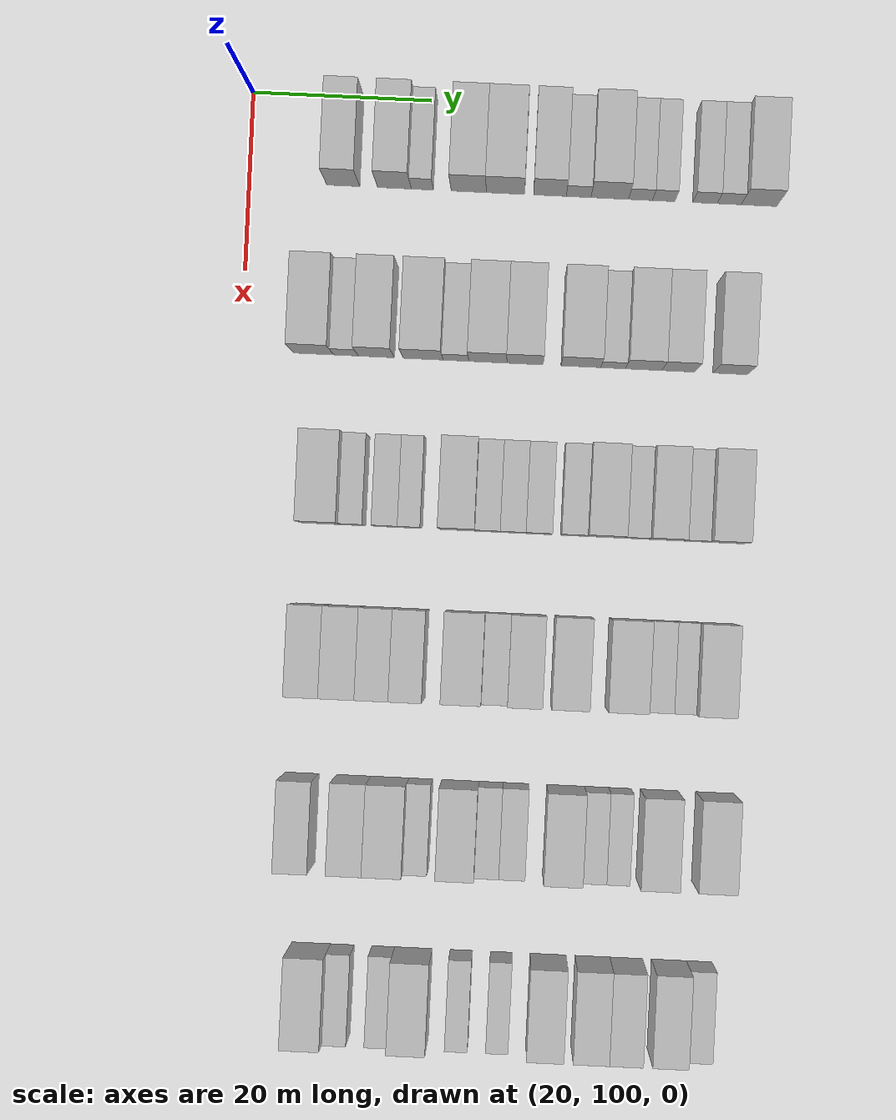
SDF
<sdf version="1.6">
 <world name="default">
  <model name="building_111">
   <static>1</static>
   <pose>25.0000 110.5520 0 0.000000 0.000000 0.000000</pose>
   <link name="link">
    <pose>0 0 4.50 0 0 0</pose>
    <collision name="collision"><geometry><box><size>10.0000 3.6870 9.0000</size></box></geometry></collision>
    <visual name="visual">
     <cast_shadows>0</cast_shadows>
     <geometry><box><size>10.0000 3.6870 9.0000</size></box></geometry>
     <material>
      <script>
       <uri>model://HANNAS_wall/materials/scripts</uri>
       <uri>model://HANNAS_wall/materials/textures</uri>
       <name>vrc/HANNAS_wall</name>
      </script>
     </material>
    </visual>
   </link>
  </model>
  <model name="building_112">
   <static>1</static>
   <pose>25.0000 116.2896 0 0.000000 0.000000 0.000000</pose>
   <link name="link">
    <pose>0 0 4.50 0 0 0</pose>
    <collision name="collision"><geometry><box><size>10.0000 3.7882 9.0000</size></box></geometry></collision>
    <visual name="visual">
     <cast_shadows>0</cast_shadows>
     <geometry><box><size>10.0000 3.7882 9.0000</size></box></geometry>
     <material>
      <script>
       <uri>model://HANNAS_wall/materials/scripts</uri>
       <uri>model://HANNAS_wall/materials/textures</uri>
       <name>vrc/HANNAS_wall</name>
      </script>
     </material>
    </visual>
   </link>
  </model>
  <model name="building_113">
   <static>1</static>
   <pose>25.0000 119.4258 0 0.000000 0.000000 0.000000</pose>
   <link name="link">
    <pose>0 0 3.00 0 0 0</pose>
    <collision name="collision"><geometry><box><size>10.0000 2.4841 6.0000</size></box></geometry></collision>
    <visual name="visual">
     <cast_shadows>0</cast_shadows>
     <geometry><box><size>10.0000 2.4841 6.0000</size></box></geometry>
     <material>
      <script>
       <uri>model://HANNAS_wall/materials/scripts</uri>
       <uri>model://HANNAS_wall/materials/textures</uri>
       <name>vrc/HANNAS_wall</name>
      </script>
     </material>
    </visual>
   </link>
  </model>
  <model name="building_114">
   <static>1</static>
   <pose>25.0000 124.6432 0 0.000000 0.000000 0.000000</pose>
   <link name="link">
    <pose>0 0 4.50 0 0 0</pose>
    <collision name="collision"><geometry><box><size>10.0000 3.9507 9.0000</size></box></geometry></collision>
    <visual name="visual">
     <cast_shadows>0</cast_shadows>
     <geometry><box><size>10.0000 3.9507 9.0000</size></box></geometry>
     <material>
      <script>
       <uri>model://HANNAS_wall/materials/scripts</uri>
       <uri>model://HANNAS_wall/materials/textures</uri>
       <name>vrc/HANNAS_wall</name>
      </script>
     </material>
    </visual>
   </link>
  </model>
  <model name="building_115">
   <static>1</static>
   <pose>25.0000 128.7717 0 0.000000 0.000000 0.000000</pose>
   <link name="link">
    <pose>0 0 4.50 0 0 0</pose>
    <collision name="collision"><geometry><box><size>10.0000 4.3062 9.0000</size></box></geometry></collision>
    <visual name="visual">
     <cast_shadows>0</cast_shadows>
     <geometry><box><size>10.0000 4.3062 9.0000</size></box></geometry>
     <material>
      <script>
       <uri>model://HANNAS_wall/materials/scripts</uri>
       <uri>model://HANNAS_wall/materials/textures</uri>
       <name>vrc/HANNAS_wall</name>
      </script>
     </material>
    </visual>
   </link>
  </model>
  <model name="building_116">
   <static>1</static>
   <pose>25.0000 133.7545 0 0.000000 0.000000 0.000000</pose>
   <link name="link">
    <pose>0 0 4.50 0 0 0</pose>
    <collision name="collision"><geometry><box><size>10.0000 3.6595 9.0000</size></box></geometry></collision>
    <visual name="visual">
     <cast_shadows>0</cast_shadows>
     <geometry><box><size>10.0000 3.6595 9.0000</size></box></geometry>
     <material>
      <script>
       <uri>model://HANNAS_wall/materials/scripts</uri>
       <uri>model://HANNAS_wall/materials/textures</uri>
       <name>vrc/HANNAS_wall</name>
      </script>
     </material>
    </visual>
   </link>
  </model>
  <model name="building_117">
   <static>1</static>
   <pose>25.0000 136.9724 0 0.000000 0.000000 0.000000</pose>
   <link name="link">
    <pose>0 0 3.00 0 0 0</pose>
    <collision name="collision"><geometry><box><size>10.0000 2.7761 6.0000</size></box></geometry></collision>
    <visual name="visual">
     <cast_shadows>0</cast_shadows>
     <geometry><box><size>10.0000 2.7761 6.0000</size></box></geometry>
     <material>
      <script>
       <uri>model://HANNAS_wall/materials/scripts</uri>
       <uri>model://HANNAS_wall/materials/textures</uri>
       <name>vrc/HANNAS_wall</name>
      </script>
     </material>
    </visual>
   </link>
  </model>
  <model name="building_118">
   <static>1</static>
   <pose>25.0000 140.4654 0 0.000000 0.000000 0.000000</pose>
   <link name="link">
    <pose>0 0 4.50 0 0 0</pose>
    <collision name="collision"><geometry><box><size>10.0000 4.2099 9.0000</size></box></geometry></collision>
    <visual name="visual">
     <cast_shadows>0</cast_shadows>
     <geometry><box><size>10.0000 4.2099 9.0000</size></box></geometry>
     <material>
      <script>
       <uri>model://HANNAS_wall/materials/scripts</uri>
       <uri>model://HANNAS_wall/materials/textures</uri>
       <name>vrc/HANNAS_wall</name>
      </script>
     </material>
    </visual>
   </link>
  </model>
  <model name="building_119">
   <static>1</static>
   <pose>25.0000 143.9133 0 0.000000 0.000000 0.000000</pose>
   <link name="link">
    <pose>0 0 3.00 0 0 0</pose>
    <collision name="collision"><geometry><box><size>10.0000 2.6859 6.0000</size></box></geometry></collision>
    <visual name="visual">
     <cast_shadows>0</cast_shadows>
     <geometry><box><size>10.0000 2.6859 6.0000</size></box></geometry>
     <material>
      <script>
       <uri>model://HANNAS_wall/materials/scripts</uri>
       <uri>model://HANNAS_wall/materials/textures</uri>
       <name>vrc/HANNAS_wall</name>
      </script>
     </material>
    </visual>
   </link>
  </model>
  <model name="building_120">
   <static>1</static>
   <pose>25.0000 146.5128 0 0.000000 0.000000 0.000000</pose>
   <link name="link">
    <pose>0 0 3.00 0 0 0</pose>
    <collision name="collision"><geometry><box><size>10.0000 2.5131 6.0000</size></box></geometry></collision>
    <visual name="visual">
     <cast_shadows>0</cast_shadows>
     <geometry><box><size>10.0000 2.5131 6.0000</size></box></geometry>
     <material>
      <script>
       <uri>model://HANNAS_wall/materials/scripts</uri>
       <uri>model://HANNAS_wall/materials/textures</uri>
       <name>vrc/HANNAS_wall</name>
      </script>
     </material>
    </visual>
   </link>
  </model>
  <model name="building_121">
   <static>1</static>
   <pose>25.0000 151.1463 0 0.000000 0.000000 0.000000</pose>
   <link name="link">
    <pose>0 0 3.00 0 0 0</pose>
    <collision name="collision"><geometry><box><size>10.0000 2.7539 6.0000</size></box></geometry></collision>
    <visual name="visual">
     <cast_shadows>0</cast_shadows>
     <geometry><box><size>10.0000 2.7539 6.0000</size></box></geometry>
     <material>
      <script>
       <uri>model://HANNAS_wall/materials/scripts</uri>
       <uri>model://HANNAS_wall/materials/textures</uri>
       <name>vrc/HANNAS_wall</name>
      </script>
     </material>
    </visual>
   </link>
  </model>
  <model name="building_122">
   <static>1</static>
   <pose>25.0000 153.8680 0 0.000000 0.000000 0.000000</pose>
   <link name="link">
    <pose>0 0 3.00 0 0 0</pose>
    <collision name="collision"><geometry><box><size>10.0000 2.6895 6.0000</size></box></geometry></collision>
    <visual name="visual">
     <cast_shadows>0</cast_shadows>
     <geometry><box><size>10.0000 2.6895 6.0000</size></box></geometry>
     <material>
      <script>
       <uri>model://HANNAS_wall/materials/scripts</uri>
       <uri>model://HANNAS_wall/materials/textures</uri>
       <name>vrc/HANNAS_wall</name>
      </script>
     </material>
    </visual>
   </link>
  </model>
  <model name="building_123">
   <static>1</static>
   <pose>25.0000 157.2155 0 0.000000 0.000000 0.000000</pose>
   <link name="link">
    <pose>0 0 4.50 0 0 0</pose>
    <collision name="collision"><geometry><box><size>10.0000 4.0056 9.0000</size></box></geometry></collision>
    <visual name="visual">
     <cast_shadows>0</cast_shadows>
     <geometry><box><size>10.0000 4.0056 9.0000</size></box></geometry>
     <material>
      <script>
       <uri>model://HANNAS_wall/materials/scripts</uri>
       <uri>model://HANNAS_wall/materials/textures</uri>
       <name>vrc/HANNAS_wall</name>
      </script>
     </material>
    </visual>
   </link>
  </model>
  <model name="building_285">
   <static>1</static>
   <pose>44.0000 108.1648 0 0.000000 0.000000 0.000000</pose>
   <link name="link">
    <pose>0 0 4.50 0 0 0</pose>
    <collision name="collision"><geometry><box><size>10.0000 4.4582 9.0000</size></box></geometry></collision>
    <visual name="visual">
     <cast_shadows>0</cast_shadows>
     <geometry><box><size>10.0000 4.4582 9.0000</size></box></geometry>
     <material>
      <script>
       <uri>model://HANNAS_wall/materials/scripts</uri>
       <uri>model://HANNAS_wall/materials/textures</uri>
       <name>vrc/HANNAS_wall</name>
      </script>
     </material>
    </visual>
   </link>
  </model>
  <model name="building_286">
   <static>1</static>
   <pose>44.0000 111.7737 0 0.000000 0.000000 0.000000</pose>
   <link name="link">
    <pose>0 0 3.00 0 0 0</pose>
    <collision name="collision"><geometry><box><size>10.0000 2.7597 6.0000</size></box></geometry></collision>
    <visual name="visual">
     <cast_shadows>0</cast_shadows>
     <geometry><box><size>10.0000 2.7597 6.0000</size></box></geometry>
     <material>
      <script>
       <uri>model://HANNAS_wall/materials/scripts</uri>
       <uri>model://HANNAS_wall/materials/textures</uri>
       <name>vrc/HANNAS_wall</name>
      </script>
     </material>
    </visual>
   </link>
  </model>
  <model name="building_287">
   <static>1</static>
   <pose>44.0000 115.1800 0 0.000000 0.000000 0.000000</pose>
   <link name="link">
    <pose>0 0 4.50 0 0 0</pose>
    <collision name="collision"><geometry><box><size>10.0000 4.0528 9.0000</size></box></geometry></collision>
    <visual name="visual">
     <cast_shadows>0</cast_shadows>
     <geometry><box><size>10.0000 4.0528 9.0000</size></box></geometry>
     <material>
      <script>
       <uri>model://HANNAS_wall/materials/scripts</uri>
       <uri>model://HANNAS_wall/materials/textures</uri>
       <name>vrc/HANNAS_wall</name>
      </script>
     </material>
    </visual>
   </link>
  </model>
  <model name="building_288">
   <static>1</static>
   <pose>44.0000 120.4394 0 0.000000 0.000000 0.000000</pose>
   <link name="link">
    <pose>0 0 4.50 0 0 0</pose>
    <collision name="collision"><geometry><box><size>10.0000 4.4661 9.0000</size></box></geometry></collision>
    <visual name="visual">
     <cast_shadows>0</cast_shadows>
     <geometry><box><size>10.0000 4.4661 9.0000</size></box></geometry>
     <material>
      <script>
       <uri>model://HANNAS_wall/materials/scripts</uri>
       <uri>model://HANNAS_wall/materials/textures</uri>
       <name>vrc/HANNAS_wall</name>
      </script>
     </material>
    </visual>
   </link>
  </model>
  <model name="building_289">
   <static>1</static>
   <pose>44.0000 124.1171 0 0.000000 0.000000 0.000000</pose>
   <link name="link">
    <pose>0 0 3.00 0 0 0</pose>
    <collision name="collision"><geometry><box><size>10.0000 2.8892 6.0000</size></box></geometry></collision>
    <visual name="visual">
     <cast_shadows>0</cast_shadows>
     <geometry><box><size>10.0000 2.8892 6.0000</size></box></geometry>
     <material>
      <script>
       <uri>model://HANNAS_wall/materials/scripts</uri>
       <uri>model://HANNAS_wall/materials/textures</uri>
       <name>vrc/HANNAS_wall</name>
      </script>
     </material>
    </visual>
   </link>
  </model>
  <model name="building_290">
   <static>1</static>
   <pose>44.0000 127.6932 0 0.000000 0.000000 0.000000</pose>
   <link name="link">
    <pose>0 0 4.50 0 0 0</pose>
    <collision name="collision"><geometry><box><size>10.0000 4.2631 9.0000</size></box></geometry></collision>
    <visual name="visual">
     <cast_shadows>0</cast_shadows>
     <geometry><box><size>10.0000 4.2631 9.0000</size></box></geometry>
     <material>
      <script>
       <uri>model://HANNAS_wall/materials/scripts</uri>
       <uri>model://HANNAS_wall/materials/textures</uri>
       <name>vrc/HANNAS_wall</name>
      </script>
     </material>
    </visual>
   </link>
  </model>
  <model name="building_291">
   <static>1</static>
   <pose>44.0000 131.8598 0 0.000000 0.000000 0.000000</pose>
   <link name="link">
    <pose>0 0 4.50 0 0 0</pose>
    <collision name="collision"><geometry><box><size>10.0000 4.0700 9.0000</size></box></geometry></collision>
    <visual name="visual">
     <cast_shadows>0</cast_shadows>
     <geometry><box><size>10.0000 4.0700 9.0000</size></box></geometry>
     <material>
      <script>
       <uri>model://HANNAS_wall/materials/scripts</uri>
       <uri>model://HANNAS_wall/materials/textures</uri>
       <name>vrc/HANNAS_wall</name>
      </script>
     </material>
    </visual>
   </link>
  </model>
  <model name="building_292">
   <static>1</static>
   <pose>44.0000 138.1157 0 0.000000 0.000000 0.000000</pose>
   <link name="link">
    <pose>0 0 4.50 0 0 0</pose>
    <collision name="collision"><geometry><box><size>10.0000 4.4419 9.0000</size></box></geometry></collision>
    <visual name="visual">
     <cast_shadows>0</cast_shadows>
     <geometry><box><size>10.0000 4.4419 9.0000</size></box></geometry>
     <material>
      <script>
       <uri>model://HANNAS_wall/materials/scripts</uri>
       <uri>model://HANNAS_wall/materials/textures</uri>
       <name>vrc/HANNAS_wall</name>
      </script>
     </material>
    </visual>
   </link>
  </model>
  <model name="building_293">
   <static>1</static>
   <pose>44.0000 141.7270 0 0.000000 0.000000 0.000000</pose>
   <link name="link">
    <pose>0 0 3.00 0 0 0</pose>
    <collision name="collision"><geometry><box><size>10.0000 2.7805 6.0000</size></box></geometry></collision>
    <visual name="visual">
     <cast_shadows>0</cast_shadows>
     <geometry><box><size>10.0000 2.7805 6.0000</size></box></geometry>
     <material>
      <script>
       <uri>model://HANNAS_wall/materials/scripts</uri>
       <uri>model://HANNAS_wall/materials/textures</uri>
       <name>vrc/HANNAS_wall</name>
      </script>
     </material>
    </visual>
   </link>
  </model>
  <model name="building_294">
   <static>1</static>
   <pose>44.0000 145.1623 0 0.000000 0.000000 0.000000</pose>
   <link name="link">
    <pose>0 0 4.50 0 0 0</pose>
    <collision name="collision"><geometry><box><size>10.0000 4.0901 9.0000</size></box></geometry></collision>
    <visual name="visual">
     <cast_shadows>0</cast_shadows>
     <geometry><box><size>10.0000 4.0901 9.0000</size></box></geometry>
     <material>
      <script>
       <uri>model://HANNAS_wall/materials/scripts</uri>
       <uri>model://HANNAS_wall/materials/textures</uri>
       <name>vrc/HANNAS_wall</name>
      </script>
     </material>
    </visual>
   </link>
  </model>
  <model name="building_295">
   <static>1</static>
   <pose>44.0000 149.0762 0 0.000000 0.000000 0.000000</pose>
   <link name="link">
    <pose>0 0 4.50 0 0 0</pose>
    <collision name="collision"><geometry><box><size>10.0000 3.7377 9.0000</size></box></geometry></collision>
    <visual name="visual">
     <cast_shadows>0</cast_shadows>
     <geometry><box><size>10.0000 3.7377 9.0000</size></box></geometry>
     <material>
      <script>
       <uri>model://HANNAS_wall/materials/scripts</uri>
       <uri>model://HANNAS_wall/materials/textures</uri>
       <name>vrc/HANNAS_wall</name>
      </script>
     </material>
    </visual>
   </link>
  </model>
  <model name="building_296">
   <static>1</static>
   <pose>44.0000 154.8935 0 0.000000 0.000000 0.000000</pose>
   <link name="link">
    <pose>0 0 4.50 0 0 0</pose>
    <collision name="collision"><geometry><box><size>10.0000 3.8968 9.0000</size></box></geometry></collision>
    <visual name="visual">
     <cast_shadows>0</cast_shadows>
     <geometry><box><size>10.0000 3.8968 9.0000</size></box></geometry>
     <material>
      <script>
       <uri>model://HANNAS_wall/materials/scripts</uri>
       <uri>model://HANNAS_wall/materials/textures</uri>
       <name>vrc/HANNAS_wall</name>
      </script>
     </material>
    </visual>
   </link>
  </model>
  <model name="building_449">
   <static>1</static>
   <pose>63.0000 110.0225 0 0.000000 0.000000 0.000000</pose>
   <link name="link">
    <pose>0 0 4.50 0 0 0</pose>
    <collision name="collision"><geometry><box><size>10.0000 4.4672 9.0000</size></box></geometry></collision>
    <visual name="visual">
     <cast_shadows>0</cast_shadows>
     <geometry><box><size>10.0000 4.4672 9.0000</size></box></geometry>
     <material>
      <script>
       <uri>model://HANNAS_wall/materials/scripts</uri>
       <uri>model://HANNAS_wall/materials/textures</uri>
       <name>vrc/HANNAS_wall</name>
      </script>
     </material>
    </visual>
   </link>
  </model>
  <model name="building_450">
   <static>1</static>
   <pose>63.0000 113.5663 0 0.000000 0.000000 0.000000</pose>
   <link name="link">
    <pose>0 0 3.00 0 0 0</pose>
    <collision name="collision"><geometry><box><size>10.0000 2.6205 6.0000</size></box></geometry></collision>
    <visual name="visual">
     <cast_shadows>0</cast_shadows>
     <geometry><box><size>10.0000 2.6205 6.0000</size></box></geometry>
     <material>
      <script>
       <uri>model://HANNAS_wall/materials/scripts</uri>
       <uri>model://HANNAS_wall/materials/textures</uri>
       <name>vrc/HANNAS_wall</name>
      </script>
     </material>
    </visual>
   </link>
  </model>
  <model name="building_451">
   <static>1</static>
   <pose>63.0000 117.3115 0 0.000000 0.000000 0.000000</pose>
   <link name="link">
    <pose>0 0 3.00 0 0 0</pose>
    <collision name="collision"><geometry><box><size>10.0000 2.8699 6.0000</size></box></geometry></collision>
    <visual name="visual">
     <cast_shadows>0</cast_shadows>
     <geometry><box><size>10.0000 2.8699 6.0000</size></box></geometry>
     <material>
      <script>
       <uri>model://HANNAS_wall/materials/scripts</uri>
       <uri>model://HANNAS_wall/materials/textures</uri>
       <name>vrc/HANNAS_wall</name>
      </script>
     </material>
    </visual>
   </link>
  </model>
  <model name="building_452">
   <static>1</static>
   <pose>63.0000 119.9893 0 0.000000 0.000000 0.000000</pose>
   <link name="link">
    <pose>0 0 3.00 0 0 0</pose>
    <collision name="collision"><geometry><box><size>10.0000 2.4857 6.0000</size></box></geometry></collision>
    <visual name="visual">
     <cast_shadows>0</cast_shadows>
     <geometry><box><size>10.0000 2.4857 6.0000</size></box></geometry>
     <material>
      <script>
       <uri>model://HANNAS_wall/materials/scripts</uri>
       <uri>model://HANNAS_wall/materials/textures</uri>
       <name>vrc/HANNAS_wall</name>
      </script>
     </material>
    </visual>
   </link>
  </model>
  <model name="building_453">
   <static>1</static>
   <pose>63.0000 125.2352 0 0.000000 0.000000 0.000000</pose>
   <link name="link">
    <pose>0 0 4.50 0 0 0</pose>
    <collision name="collision"><geometry><box><size>10.0000 4.0062 9.0000</size></box></geometry></collision>
    <visual name="visual">
     <cast_shadows>0</cast_shadows>
     <geometry><box><size>10.0000 4.0062 9.0000</size></box></geometry>
     <material>
      <script>
       <uri>model://HANNAS_wall/materials/scripts</uri>
       <uri>model://HANNAS_wall/materials/textures</uri>
       <name>vrc/HANNAS_wall</name>
      </script>
     </material>
    </visual>
   </link>
  </model>
  <model name="building_454">
   <static>1</static>
   <pose>63.0000 128.6242 0 0.000000 0.000000 0.000000</pose>
   <link name="link">
    <pose>0 0 3.00 0 0 0</pose>
    <collision name="collision"><geometry><box><size>10.0000 2.7716 6.0000</size></box></geometry></collision>
    <visual name="visual">
     <cast_shadows>0</cast_shadows>
     <geometry><box><size>10.0000 2.7716 6.0000</size></box></geometry>
     <material>
      <script>
       <uri>model://HANNAS_wall/materials/scripts</uri>
       <uri>model://HANNAS_wall/materials/textures</uri>
       <name>vrc/HANNAS_wall</name>
      </script>
     </material>
    </visual>
   </link>
  </model>
  <model name="building_455">
   <static>1</static>
   <pose>63.0000 131.4279 0 0.000000 0.000000 0.000000</pose>
   <link name="link">
    <pose>0 0 3.00 0 0 0</pose>
    <collision name="collision"><geometry><box><size>10.0000 2.8358 6.0000</size></box></geometry></collision>
    <visual name="visual">
     <cast_shadows>0</cast_shadows>
     <geometry><box><size>10.0000 2.8358 6.0000</size></box></geometry>
     <material>
      <script>
       <uri>model://HANNAS_wall/materials/scripts</uri>
       <uri>model://HANNAS_wall/materials/textures</uri>
       <name>vrc/HANNAS_wall</name>
      </script>
     </material>
    </visual>
   </link>
  </model>
  <model name="building_456">
   <static>1</static>
   <pose>63.0000 134.2974 0 0.000000 0.000000 0.000000</pose>
   <link name="link">
    <pose>0 0 3.00 0 0 0</pose>
    <collision name="collision"><geometry><box><size>10.0000 2.9033 6.0000</size></box></geometry></collision>
    <visual name="visual">
     <cast_shadows>0</cast_shadows>
     <geometry><box><size>10.0000 2.9033 6.0000</size></box></geometry>
     <material>
      <script>
       <uri>model://HANNAS_wall/materials/scripts</uri>
       <uri>model://HANNAS_wall/materials/textures</uri>
       <name>vrc/HANNAS_wall</name>
      </script>
     </material>
    </visual>
   </link>
  </model>
  <model name="building_457">
   <static>1</static>
   <pose>63.0000 138.1953 0 0.000000 0.000000 0.000000</pose>
   <link name="link">
    <pose>0 0 3.00 0 0 0</pose>
    <collision name="collision"><geometry><box><size>10.0000 2.8924 6.0000</size></box></geometry></collision>
    <visual name="visual">
     <cast_shadows>0</cast_shadows>
     <geometry><box><size>10.0000 2.8924 6.0000</size></box></geometry>
     <material>
      <script>
       <uri>model://HANNAS_wall/materials/scripts</uri>
       <uri>model://HANNAS_wall/materials/textures</uri>
       <name>vrc/HANNAS_wall</name>
      </script>
     </material>
    </visual>
   </link>
  </model>
  <model name="building_458">
   <static>1</static>
   <pose>63.0000 141.7255 0 0.000000 0.000000 0.000000</pose>
   <link name="link">
    <pose>0 0 4.50 0 0 0</pose>
    <collision name="collision"><geometry><box><size>10.0000 4.1680 9.0000</size></box></geometry></collision>
    <visual name="visual">
     <cast_shadows>0</cast_shadows>
     <geometry><box><size>10.0000 4.1680 9.0000</size></box></geometry>
     <material>
      <script>
       <uri>model://HANNAS_wall/materials/scripts</uri>
       <uri>model://HANNAS_wall/materials/textures</uri>
       <name>vrc/HANNAS_wall</name>
      </script>
     </material>
    </visual>
   </link>
  </model>
  <model name="building_459">
   <static>1</static>
   <pose>63.0000 145.1602 0 0.000000 0.000000 0.000000</pose>
   <link name="link">
    <pose>0 0 3.00 0 0 0</pose>
    <collision name="collision"><geometry><box><size>10.0000 2.7015 6.0000</size></box></geometry></collision>
    <visual name="visual">
     <cast_shadows>0</cast_shadows>
     <geometry><box><size>10.0000 2.7015 6.0000</size></box></geometry>
     <material>
      <script>
       <uri>model://HANNAS_wall/materials/scripts</uri>
       <uri>model://HANNAS_wall/materials/textures</uri>
       <name>vrc/HANNAS_wall</name>
      </script>
     </material>
    </visual>
   </link>
  </model>
  <model name="building_460">
   <static>1</static>
   <pose>63.0000 148.4349 0 0.000000 0.000000 0.000000</pose>
   <link name="link">
    <pose>0 0 4.50 0 0 0</pose>
    <collision name="collision"><geometry><box><size>10.0000 3.8479 9.0000</size></box></geometry></collision>
    <visual name="visual">
     <cast_shadows>0</cast_shadows>
     <geometry><box><size>10.0000 3.8479 9.0000</size></box></geometry>
     <material>
      <script>
       <uri>model://HANNAS_wall/materials/scripts</uri>
       <uri>model://HANNAS_wall/materials/textures</uri>
       <name>vrc/HANNAS_wall</name>
      </script>
     </material>
    </visual>
   </link>
  </model>
  <model name="building_461">
   <static>1</static>
   <pose>63.0000 151.7336 0 0.000000 0.000000 0.000000</pose>
   <link name="link">
    <pose>0 0 3.00 0 0 0</pose>
    <collision name="collision"><geometry><box><size>10.0000 2.7494 6.0000</size></box></geometry></collision>
    <visual name="visual">
     <cast_shadows>0</cast_shadows>
     <geometry><box><size>10.0000 2.7494 6.0000</size></box></geometry>
     <material>
      <script>
       <uri>model://HANNAS_wall/materials/scripts</uri>
       <uri>model://HANNAS_wall/materials/textures</uri>
       <name>vrc/HANNAS_wall</name>
      </script>
     </material>
    </visual>
   </link>
  </model>
  <model name="building_462">
   <static>1</static>
   <pose>63.0000 155.1711 0 0.000000 0.000000 0.000000</pose>
   <link name="link">
    <pose>0 0 4.50 0 0 0</pose>
    <collision name="collision"><geometry><box><size>10.0000 4.1257 9.0000</size></box></geometry></collision>
    <visual name="visual">
     <cast_shadows>0</cast_shadows>
     <geometry><box><size>10.0000 4.1257 9.0000</size></box></geometry>
     <material>
      <script>
       <uri>model://HANNAS_wall/materials/scripts</uri>
       <uri>model://HANNAS_wall/materials/textures</uri>
       <name>vrc/HANNAS_wall</name>
      </script>
     </material>
    </visual>
   </link>
  </model>
  <model name="building_616">
   <static>1</static>
   <pose>82.0000 109.3740 0 0.000000 0.000000 0.000000</pose>
   <link name="link">
    <pose>0 0 4.50 0 0 0</pose>
    <collision name="collision"><geometry><box><size>10.0000 3.7739 9.0000</size></box></geometry></collision>
    <visual name="visual">
     <cast_shadows>0</cast_shadows>
     <geometry><box><size>10.0000 3.7739 9.0000</size></box></geometry>
     <material>
      <script>
       <uri>model://HANNAS_wall/materials/scripts</uri>
       <uri>model://HANNAS_wall/materials/textures</uri>
       <name>vrc/HANNAS_wall</name>
      </script>
     </material>
    </visual>
   </link>
  </model>
  <model name="building_617">
   <static>1</static>
   <pose>82.0000 113.2169 0 0.000000 0.000000 0.000000</pose>
   <link name="link">
    <pose>0 0 4.50 0 0 0</pose>
    <collision name="collision"><geometry><box><size>10.0000 3.9120 9.0000</size></box></geometry></collision>
    <visual name="visual">
     <cast_shadows>0</cast_shadows>
     <geometry><box><size>10.0000 3.9120 9.0000</size></box></geometry>
     <material>
      <script>
       <uri>model://HANNAS_wall/materials/scripts</uri>
       <uri>model://HANNAS_wall/materials/textures</uri>
       <name>vrc/HANNAS_wall</name>
      </script>
     </material>
    </visual>
   </link>
  </model>
  <model name="building_618">
   <static>1</static>
   <pose>82.0000 117.0013 0 0.000000 0.000000 0.000000</pose>
   <link name="link">
    <pose>0 0 4.50 0 0 0</pose>
    <collision name="collision"><geometry><box><size>10.0000 3.6567 9.0000</size></box></geometry></collision>
    <visual name="visual">
     <cast_shadows>0</cast_shadows>
     <geometry><box><size>10.0000 3.6567 9.0000</size></box></geometry>
     <material>
      <script>
       <uri>model://HANNAS_wall/materials/scripts</uri>
       <uri>model://HANNAS_wall/materials/textures</uri>
       <name>vrc/HANNAS_wall</name>
      </script>
     </material>
    </visual>
   </link>
  </model>
  <model name="building_619">
   <static>1</static>
   <pose>82.0000 120.6330 0 0.000000 0.000000 0.000000</pose>
   <link name="link">
    <pose>0 0 4.50 0 0 0</pose>
    <collision name="collision"><geometry><box><size>10.0000 3.6068 9.0000</size></box></geometry></collision>
    <visual name="visual">
     <cast_shadows>0</cast_shadows>
     <geometry><box><size>10.0000 3.6068 9.0000</size></box></geometry>
     <material>
      <script>
       <uri>model://HANNAS_wall/materials/scripts</uri>
       <uri>model://HANNAS_wall/materials/textures</uri>
       <name>vrc/HANNAS_wall</name>
      </script>
     </material>
    </visual>
   </link>
  </model>
  <model name="building_620">
   <static>1</static>
   <pose>82.0000 126.6398 0 0.000000 0.000000 0.000000</pose>
   <link name="link">
    <pose>0 0 4.50 0 0 0</pose>
    <collision name="collision"><geometry><box><size>10.0000 4.4067 9.0000</size></box></geometry></collision>
    <visual name="visual">
     <cast_shadows>0</cast_shadows>
     <geometry><box><size>10.0000 4.4067 9.0000</size></box></geometry>
     <material>
      <script>
       <uri>model://HANNAS_wall/materials/scripts</uri>
       <uri>model://HANNAS_wall/materials/textures</uri>
       <name>vrc/HANNAS_wall</name>
      </script>
     </material>
    </visual>
   </link>
  </model>
  <model name="building_621">
   <static>1</static>
   <pose>82.0000 130.2785 0 0.000000 0.000000 0.000000</pose>
   <link name="link">
    <pose>0 0 3.00 0 0 0</pose>
    <collision name="collision"><geometry><box><size>10.0000 2.8707 6.0000</size></box></geometry></collision>
    <visual name="visual">
     <cast_shadows>0</cast_shadows>
     <geometry><box><size>10.0000 2.8707 6.0000</size></box></geometry>
     <material>
      <script>
       <uri>model://HANNAS_wall/materials/scripts</uri>
       <uri>model://HANNAS_wall/materials/textures</uri>
       <name>vrc/HANNAS_wall</name>
      </script>
     </material>
    </visual>
   </link>
  </model>
  <model name="building_622">
   <static>1</static>
   <pose>82.0000 133.6136 0 0.000000 0.000000 0.000000</pose>
   <link name="link">
    <pose>0 0 4.50 0 0 0</pose>
    <collision name="collision"><geometry><box><size>10.0000 3.7995 9.0000</size></box></geometry></collision>
    <visual name="visual">
     <cast_shadows>0</cast_shadows>
     <geometry><box><size>10.0000 3.7995 9.0000</size></box></geometry>
     <material>
      <script>
       <uri>model://HANNAS_wall/materials/scripts</uri>
       <uri>model://HANNAS_wall/materials/textures</uri>
       <name>vrc/HANNAS_wall</name>
      </script>
     </material>
    </visual>
   </link>
  </model>
  <model name="building_623">
   <static>1</static>
   <pose>82.0000 138.5707 0 0.000000 0.000000 0.000000</pose>
   <link name="link">
    <pose>0 0 4.50 0 0 0</pose>
    <collision name="collision"><geometry><box><size>10.0000 4.1148 9.0000</size></box></geometry></collision>
    <visual name="visual">
     <cast_shadows>0</cast_shadows>
     <geometry><box><size>10.0000 4.1148 9.0000</size></box></geometry>
     <material>
      <script>
       <uri>model://HANNAS_wall/materials/scripts</uri>
       <uri>model://HANNAS_wall/materials/textures</uri>
       <name>vrc/HANNAS_wall</name>
      </script>
     </material>
    </visual>
   </link>
  </model>
  <model name="building_624">
   <static>1</static>
   <pose>82.0000 144.8416 0 0.000000 0.000000 0.000000</pose>
   <link name="link">
    <pose>0 0 4.50 0 0 0</pose>
    <collision name="collision"><geometry><box><size>10.0000 4.4271 9.0000</size></box></geometry></collision>
    <visual name="visual">
     <cast_shadows>0</cast_shadows>
     <geometry><box><size>10.0000 4.4271 9.0000</size></box></geometry>
     <material>
      <script>
       <uri>model://HANNAS_wall/materials/scripts</uri>
       <uri>model://HANNAS_wall/materials/textures</uri>
       <name>vrc/HANNAS_wall</name>
      </script>
     </material>
    </visual>
   </link>
  </model>
  <model name="building_625">
   <static>1</static>
   <pose>82.0000 148.5165 0 0.000000 0.000000 0.000000</pose>
   <link name="link">
    <pose>0 0 3.00 0 0 0</pose>
    <collision name="collision"><geometry><box><size>10.0000 2.9227 6.0000</size></box></geometry></collision>
    <visual name="visual">
     <cast_shadows>0</cast_shadows>
     <geometry><box><size>10.0000 2.9227 6.0000</size></box></geometry>
     <material>
      <script>
       <uri>model://HANNAS_wall/materials/scripts</uri>
       <uri>model://HANNAS_wall/materials/textures</uri>
       <name>vrc/HANNAS_wall</name>
      </script>
     </material>
    </visual>
   </link>
  </model>
  <model name="building_626">
   <static>1</static>
   <pose>82.0000 151.1850 0 0.000000 0.000000 0.000000</pose>
   <link name="link">
    <pose>0 0 3.00 0 0 0</pose>
    <collision name="collision"><geometry><box><size>10.0000 2.4142 6.0000</size></box></geometry></collision>
    <visual name="visual">
     <cast_shadows>0</cast_shadows>
     <geometry><box><size>10.0000 2.4142 6.0000</size></box></geometry>
     <material>
      <script>
       <uri>model://HANNAS_wall/materials/scripts</uri>
       <uri>model://HANNAS_wall/materials/textures</uri>
       <name>vrc/HANNAS_wall</name>
      </script>
     </material>
    </visual>
   </link>
  </model>
  <model name="building_627">
   <static>1</static>
   <pose>82.0000 154.4949 0 0.000000 0.000000 0.000000</pose>
   <link name="link">
    <pose>0 0 4.50 0 0 0</pose>
    <collision name="collision"><geometry><box><size>10.0000 4.2056 9.0000</size></box></geometry></collision>
    <visual name="visual">
     <cast_shadows>0</cast_shadows>
     <geometry><box><size>10.0000 4.2056 9.0000</size></box></geometry>
     <material>
      <script>
       <uri>model://HANNAS_wall/materials/scripts</uri>
       <uri>model://HANNAS_wall/materials/textures</uri>
       <name>vrc/HANNAS_wall</name>
      </script>
     </material>
    </visual>
   </link>
  </model>
  <model name="building_804">
   <static>1</static>
   <pose>101.0000 109.1007 0 0.000000 0.000000 0.000000</pose>
   <link name="link">
    <pose>0 0 4.50 0 0 0</pose>
    <collision name="collision"><geometry><box><size>10.0000 3.7615 9.0000</size></box></geometry></collision>
    <visual name="visual">
     <cast_shadows>0</cast_shadows>
     <geometry><box><size>10.0000 3.7615 9.0000</size></box></geometry>
     <material>
      <script>
       <uri>model://HANNAS_wall/materials/scripts</uri>
       <uri>model://HANNAS_wall/materials/textures</uri>
       <name>vrc/HANNAS_wall</name>
      </script>
     </material>
    </visual>
   </link>
  </model>
  <model name="building_805">
   <static>1</static>
   <pose>101.0000 114.9077 0 0.000000 0.000000 0.000000</pose>
   <link name="link">
    <pose>0 0 4.50 0 0 0</pose>
    <collision name="collision"><geometry><box><size>10.0000 3.8525 9.0000</size></box></geometry></collision>
    <visual name="visual">
     <cast_shadows>0</cast_shadows>
     <geometry><box><size>10.0000 3.8525 9.0000</size></box></geometry>
     <material>
      <script>
       <uri>model://HANNAS_wall/materials/scripts</uri>
       <uri>model://HANNAS_wall/materials/textures</uri>
       <name>vrc/HANNAS_wall</name>
      </script>
     </material>
    </visual>
   </link>
  </model>
  <model name="building_806">
   <static>1</static>
   <pose>101.0000 118.9839 0 0.000000 0.000000 0.000000</pose>
   <link name="link">
    <pose>0 0 4.50 0 0 0</pose>
    <collision name="collision"><geometry><box><size>10.0000 4.2998 9.0000</size></box></geometry></collision>
    <visual name="visual">
     <cast_shadows>0</cast_shadows>
     <geometry><box><size>10.0000 4.2998 9.0000</size></box></geometry>
     <material>
      <script>
       <uri>model://HANNAS_wall/materials/scripts</uri>
       <uri>model://HANNAS_wall/materials/textures</uri>
       <name>vrc/HANNAS_wall</name>
      </script>
     </material>
    </visual>
   </link>
  </model>
  <model name="building_807">
   <static>1</static>
   <pose>101.0000 122.4573 0 0.000000 0.000000 0.000000</pose>
   <link name="link">
    <pose>0 0 3.00 0 0 0</pose>
    <collision name="collision"><geometry><box><size>10.0000 2.6469 6.0000</size></box></geometry></collision>
    <visual name="visual">
     <cast_shadows>0</cast_shadows>
     <geometry><box><size>10.0000 2.6469 6.0000</size></box></geometry>
     <material>
      <script>
       <uri>model://HANNAS_wall/materials/scripts</uri>
       <uri>model://HANNAS_wall/materials/textures</uri>
       <name>vrc/HANNAS_wall</name>
      </script>
     </material>
    </visual>
   </link>
  </model>
  <model name="building_808">
   <static>1</static>
   <pose>101.0000 126.8718 0 0.000000 0.000000 0.000000</pose>
   <link name="link">
    <pose>0 0 4.50 0 0 0</pose>
    <collision name="collision"><geometry><box><size>10.0000 4.1821 9.0000</size></box></geometry></collision>
    <visual name="visual">
     <cast_shadows>0</cast_shadows>
     <geometry><box><size>10.0000 4.1821 9.0000</size></box></geometry>
     <material>
      <script>
       <uri>model://HANNAS_wall/materials/scripts</uri>
       <uri>model://HANNAS_wall/materials/textures</uri>
       <name>vrc/HANNAS_wall</name>
      </script>
     </material>
    </visual>
   </link>
  </model>
  <model name="building_809">
   <static>1</static>
   <pose>101.0000 130.3065 0 0.000000 0.000000 0.000000</pose>
   <link name="link">
    <pose>0 0 3.00 0 0 0</pose>
    <collision name="collision"><geometry><box><size>10.0000 2.6873 6.0000</size></box></geometry></collision>
    <visual name="visual">
     <cast_shadows>0</cast_shadows>
     <geometry><box><size>10.0000 2.6873 6.0000</size></box></geometry>
     <material>
      <script>
       <uri>model://HANNAS_wall/materials/scripts</uri>
       <uri>model://HANNAS_wall/materials/textures</uri>
       <name>vrc/HANNAS_wall</name>
      </script>
     </material>
    </visual>
   </link>
  </model>
  <model name="building_810">
   <static>1</static>
   <pose>101.0000 133.0940 0 0.000000 0.000000 0.000000</pose>
   <link name="link">
    <pose>0 0 3.00 0 0 0</pose>
    <collision name="collision"><geometry><box><size>10.0000 2.8877 6.0000</size></box></geometry></collision>
    <visual name="visual">
     <cast_shadows>0</cast_shadows>
     <geometry><box><size>10.0000 2.8877 6.0000</size></box></geometry>
     <material>
      <script>
       <uri>model://HANNAS_wall/materials/scripts</uri>
       <uri>model://HANNAS_wall/materials/textures</uri>
       <name>vrc/HANNAS_wall</name>
      </script>
     </material>
    </visual>
   </link>
  </model>
  <model name="building_811">
   <static>1</static>
   <pose>101.0000 138.6591 0 0.000000 0.000000 0.000000</pose>
   <link name="link">
    <pose>0 0 4.50 0 0 0</pose>
    <collision name="collision"><geometry><box><size>10.0000 4.2426 9.0000</size></box></geometry></collision>
    <visual name="visual">
     <cast_shadows>0</cast_shadows>
     <geometry><box><size>10.0000 4.2426 9.0000</size></box></geometry>
     <material>
      <script>
       <uri>model://HANNAS_wall/materials/scripts</uri>
       <uri>model://HANNAS_wall/materials/textures</uri>
       <name>vrc/HANNAS_wall</name>
      </script>
     </material>
    </visual>
   </link>
  </model>
  <model name="building_812">
   <static>1</static>
   <pose>101.0000 142.1297 0 0.000000 0.000000 0.000000</pose>
   <link name="link">
    <pose>0 0 3.00 0 0 0</pose>
    <collision name="collision"><geometry><box><size>10.0000 2.6987 6.0000</size></box></geometry></collision>
    <visual name="visual">
     <cast_shadows>0</cast_shadows>
     <geometry><box><size>10.0000 2.6987 6.0000</size></box></geometry>
     <material>
      <script>
       <uri>model://HANNAS_wall/materials/scripts</uri>
       <uri>model://HANNAS_wall/materials/textures</uri>
       <name>vrc/HANNAS_wall</name>
      </script>
     </material>
    </visual>
   </link>
  </model>
  <model name="building_813">
   <static>1</static>
   <pose>101.0000 144.7495 0 0.000000 0.000000 0.000000</pose>
   <link name="link">
    <pose>0 0 3.00 0 0 0</pose>
    <collision name="collision"><geometry><box><size>10.0000 2.5408 6.0000</size></box></geometry></collision>
    <visual name="visual">
     <cast_shadows>0</cast_shadows>
     <geometry><box><size>10.0000 2.5408 6.0000</size></box></geometry>
     <material>
      <script>
       <uri>model://HANNAS_wall/materials/scripts</uri>
       <uri>model://HANNAS_wall/materials/textures</uri>
       <name>vrc/HANNAS_wall</name>
      </script>
     </material>
    </visual>
   </link>
  </model>
  <model name="building_814">
   <static>1</static>
   <pose>101.0000 149.1392 0 0.000000 0.000000 0.000000</pose>
   <link name="link">
    <pose>0 0 4.50 0 0 0</pose>
    <collision name="collision"><geometry><box><size>10.0000 4.2387 9.0000</size></box></geometry></collision>
    <visual name="visual">
     <cast_shadows>0</cast_shadows>
     <geometry><box><size>10.0000 4.2387 9.0000</size></box></geometry>
     <material>
      <script>
       <uri>model://HANNAS_wall/materials/scripts</uri>
       <uri>model://HANNAS_wall/materials/textures</uri>
       <name>vrc/HANNAS_wall</name>
      </script>
     </material>
    </visual>
   </link>
  </model>
  <model name="building_815">
   <static>1</static>
   <pose>101.0000 155.3900 0 0.000000 0.000000 0.000000</pose>
   <link name="link">
    <pose>0 0 4.50 0 0 0</pose>
    <collision name="collision"><geometry><box><size>10.0000 4.2630 9.0000</size></box></geometry></collision>
    <visual name="visual">
     <cast_shadows>0</cast_shadows>
     <geometry><box><size>10.0000 4.2630 9.0000</size></box></geometry>
     <material>
      <script>
       <uri>model://HANNAS_wall/materials/scripts</uri>
       <uri>model://HANNAS_wall/materials/textures</uri>
       <name>vrc/HANNAS_wall</name>
      </script>
     </material>
    </visual>
   </link>
  </model>
  <model name="building_978">
   <static>1</static>
   <pose>120.0000 111.0281 0 0.000000 0.000000 0.000000</pose>
   <link name="link">
    <pose>0 0 4.50 0 0 0</pose>
    <collision name="collision"><geometry><box><size>10.0000 4.3468 9.0000</size></box></geometry></collision>
    <visual name="visual">
     <cast_shadows>0</cast_shadows>
     <geometry><box><size>10.0000 4.3468 9.0000</size></box></geometry>
     <material>
      <script>
       <uri>model://HANNAS_wall/materials/scripts</uri>
       <uri>model://HANNAS_wall/materials/textures</uri>
       <name>vrc/HANNAS_wall</name>
      </script>
     </material>
    </visual>
   </link>
  </model>
  <model name="building_979">
   <static>1</static>
   <pose>120.0000 114.5190 0 0.000000 0.000000 0.000000</pose>
   <link name="link">
    <pose>0 0 3.00 0 0 0</pose>
    <collision name="collision"><geometry><box><size>10.0000 2.6351 6.0000</size></box></geometry></collision>
    <visual name="visual">
     <cast_shadows>0</cast_shadows>
     <geometry><box><size>10.0000 2.6351 6.0000</size></box></geometry>
     <material>
      <script>
       <uri>model://HANNAS_wall/materials/scripts</uri>
       <uri>model://HANNAS_wall/materials/textures</uri>
       <name>vrc/HANNAS_wall</name>
      </script>
     </material>
    </visual>
   </link>
  </model>
  <model name="building_980">
   <static>1</static>
   <pose>120.0000 119.1142 0 0.000000 0.000000 0.000000</pose>
   <link name="link">
    <pose>0 0 3.00 0 0 0</pose>
    <collision name="collision"><geometry><box><size>10.0000 2.5553 6.0000</size></box></geometry></collision>
    <visual name="visual">
     <cast_shadows>0</cast_shadows>
     <geometry><box><size>10.0000 2.5553 6.0000</size></box></geometry>
     <material>
      <script>
       <uri>model://HANNAS_wall/materials/scripts</uri>
       <uri>model://HANNAS_wall/materials/textures</uri>
       <name>vrc/HANNAS_wall</name>
      </script>
     </material>
    </visual>
   </link>
  </model>
  <model name="building_981">
   <static>1</static>
   <pose>120.0000 122.5029 0 0.000000 0.000000 0.000000</pose>
   <link name="link">
    <pose>0 0 4.50 0 0 0</pose>
    <collision name="collision"><geometry><box><size>10.0000 4.2222 9.0000</size></box></geometry></collision>
    <visual name="visual">
     <cast_shadows>0</cast_shadows>
     <geometry><box><size>10.0000 4.2222 9.0000</size></box></geometry>
     <material>
      <script>
       <uri>model://HANNAS_wall/materials/scripts</uri>
       <uri>model://HANNAS_wall/materials/textures</uri>
       <name>vrc/HANNAS_wall</name>
      </script>
     </material>
    </visual>
   </link>
  </model>
  <model name="building_982">
   <static>1</static>
   <pose>120.0000 127.8680 0 0.000000 0.000000 0.000000</pose>
   <link name="link">
    <pose>0 0 3.00 0 0 0</pose>
    <collision name="collision"><geometry><box><size>10.0000 2.5078 6.0000</size></box></geometry></collision>
    <visual name="visual">
     <cast_shadows>0</cast_shadows>
     <geometry><box><size>10.0000 2.5078 6.0000</size></box></geometry>
     <material>
      <script>
       <uri>model://HANNAS_wall/materials/scripts</uri>
       <uri>model://HANNAS_wall/materials/textures</uri>
       <name>vrc/HANNAS_wall</name>
      </script>
     </material>
    </visual>
   </link>
  </model>
  <model name="building_983">
   <static>1</static>
   <pose>120.0000 132.3462 0 0.000000 0.000000 0.000000</pose>
   <link name="link">
    <pose>0 0 3.00 0 0 0</pose>
    <collision name="collision"><geometry><box><size>10.0000 2.4486 6.0000</size></box></geometry></collision>
    <visual name="visual">
     <cast_shadows>0</cast_shadows>
     <geometry><box><size>10.0000 2.4486 6.0000</size></box></geometry>
     <material>
      <script>
       <uri>model://HANNAS_wall/materials/scripts</uri>
       <uri>model://HANNAS_wall/materials/textures</uri>
       <name>vrc/HANNAS_wall</name>
      </script>
     </material>
    </visual>
   </link>
  </model>
  <model name="building_984">
   <static>1</static>
   <pose>120.0000 137.5930 0 0.000000 0.000000 0.000000</pose>
   <link name="link">
    <pose>0 0 4.50 0 0 0</pose>
    <collision name="collision"><geometry><box><size>10.0000 4.0450 9.0000</size></box></geometry></collision>
    <visual name="visual">
     <cast_shadows>0</cast_shadows>
     <geometry><box><size>10.0000 4.0450 9.0000</size></box></geometry>
     <material>
      <script>
       <uri>model://HANNAS_wall/materials/scripts</uri>
       <uri>model://HANNAS_wall/materials/textures</uri>
       <name>vrc/HANNAS_wall</name>
      </script>
     </material>
    </visual>
   </link>
  </model>
  <model name="building_985">
   <static>1</static>
   <pose>120.0000 142.5745 0 0.000000 0.000000 0.000000</pose>
   <link name="link">
    <pose>0 0 4.50 0 0 0</pose>
    <collision name="collision"><geometry><box><size>10.0000 3.9182 9.0000</size></box></geometry></collision>
    <visual name="visual">
     <cast_shadows>0</cast_shadows>
     <geometry><box><size>10.0000 3.9182 9.0000</size></box></geometry>
     <material>
      <script>
       <uri>model://HANNAS_wall/materials/scripts</uri>
       <uri>model://HANNAS_wall/materials/textures</uri>
       <name>vrc/HANNAS_wall</name>
      </script>
     </material>
    </visual>
   </link>
  </model>
  <model name="building_986">
   <static>1</static>
   <pose>120.0000 146.3616 0 0.000000 0.000000 0.000000</pose>
   <link name="link">
    <pose>0 0 4.50 0 0 0</pose>
    <collision name="collision"><geometry><box><size>10.0000 3.6560 9.0000</size></box></geometry></collision>
    <visual name="visual">
     <cast_shadows>0</cast_shadows>
     <geometry><box><size>10.0000 3.6560 9.0000</size></box></geometry>
     <material>
      <script>
       <uri>model://HANNAS_wall/materials/scripts</uri>
       <uri>model://HANNAS_wall/materials/textures</uri>
       <name>vrc/HANNAS_wall</name>
      </script>
     </material>
    </visual>
   </link>
  </model>
  <model name="building_987">
   <static>1</static>
   <pose>120.0000 151.1558 0 0.000000 0.000000 0.000000</pose>
   <link name="link">
    <pose>0 0 4.50 0 0 0</pose>
    <collision name="collision"><geometry><box><size>10.0000 3.9324 9.0000</size></box></geometry></collision>
    <visual name="visual">
     <cast_shadows>0</cast_shadows>
     <geometry><box><size>10.0000 3.9324 9.0000</size></box></geometry>
     <material>
      <script>
       <uri>model://HANNAS_wall/materials/scripts</uri>
       <uri>model://HANNAS_wall/materials/textures</uri>
       <name>vrc/HANNAS_wall</name>
      </script>
     </material>
    </visual>
   </link>
  </model>
  <model name="building_988">
   <static>1</static>
   <pose>120.0000 154.5501 0 0.000000 0.000000 0.000000</pose>
   <link name="link">
    <pose>0 0 3.00 0 0 0</pose>
    <collision name="collision"><geometry><box><size>10.0000 2.8564 6.0000</size></box></geometry></collision>
    <visual name="visual">
     <cast_shadows>0</cast_shadows>
     <geometry><box><size>10.0000 2.8564 6.0000</size></box></geometry>
     <material>
      <script>
       <uri>model://HANNAS_wall/materials/scripts</uri>
       <uri>model://HANNAS_wall/materials/textures</uri>
       <name>vrc/HANNAS_wall</name>
      </script>
     </material>
    </visual>
   </link>
  </model>
 </world>
</sdf>
